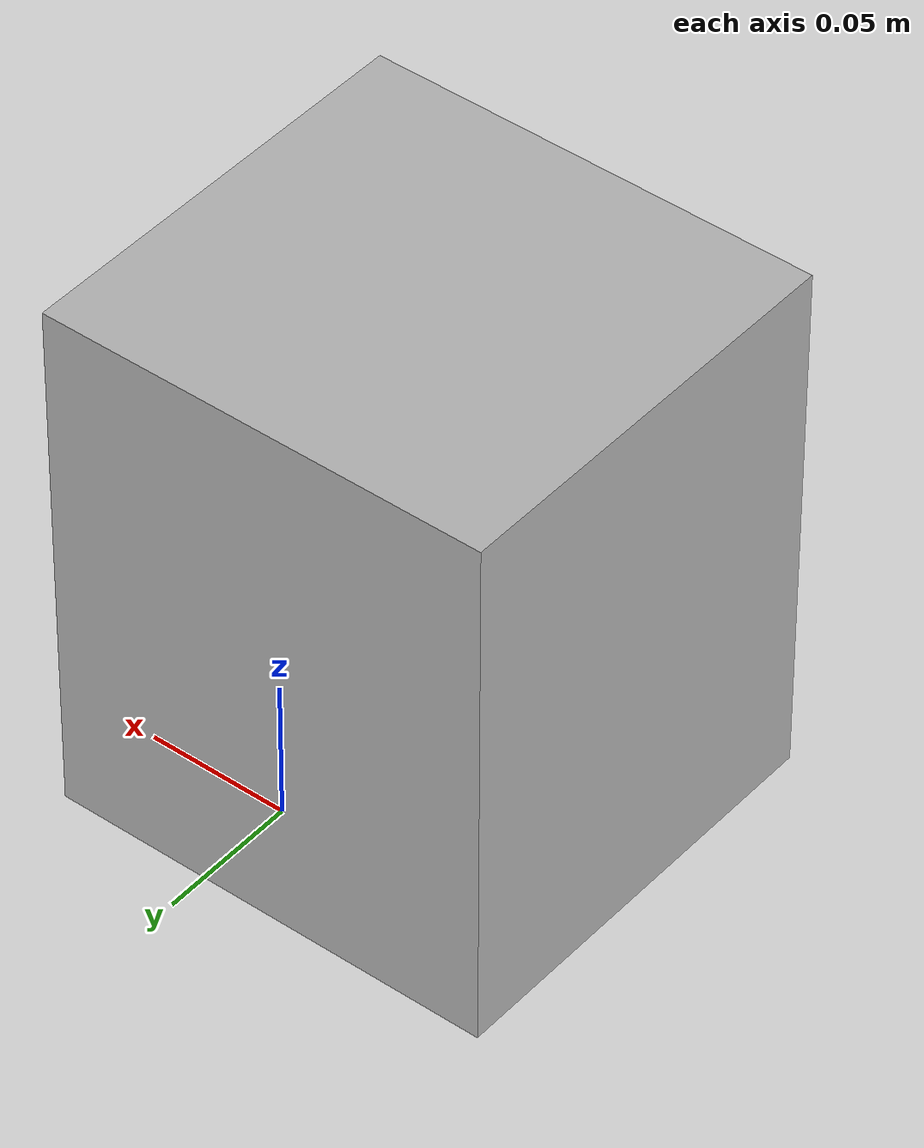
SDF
<?xml version="1.0" ?>
<sdf version="1.6">
  <model name="platform">
    <static>false</static>
    <link name="link">
      <pose>-0.067270 0.014267 0.156379 0 -0 0</pose>
      <inertial>
        <mass>1.0</mass>

        <inertia>
          <ixx>0.00355377</ixx>
          <iyy>0.00375000</iyy>
          <izz>0.00355377</izz>
          <ixy>0.0</ixy>
          <ixz>0.0</ixz>
          <iyz>0.0</iyz>
        </inertia>
      </inertial>
      <visual name="visual">
        <geometry>
          <box>
            <size>0.15 0.141934 0.18</size>
          </box>
        </geometry>
      </visual>
      <collision name="collision">
        <geometry>
          <box>
            <size>0.15 0.141934 0.18</size>
          </box>
        </geometry>
        <surface>
          <friction>
            <ode>
              <mu>10</mu>
              <mu2>20</mu2>
            </ode>
          </friction>
          <bounce>
            <restitution_coefficient>0.0</restitution_coefficient>
          </bounce>
        </surface>
      </collision>
    </link>
  </model>
</sdf>
